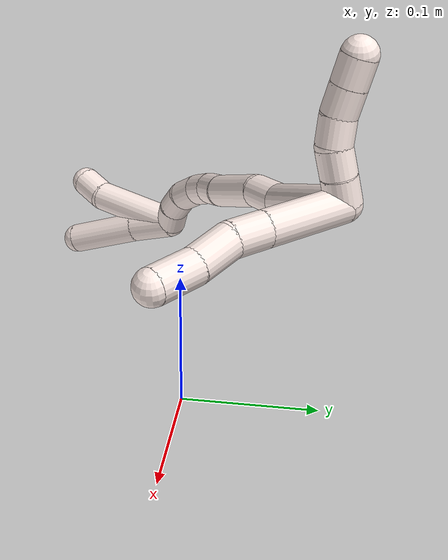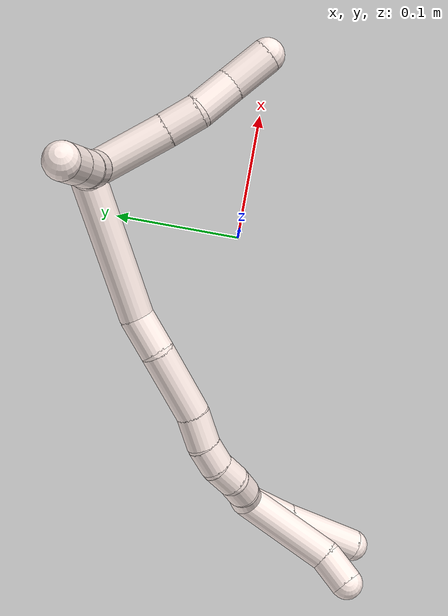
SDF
<sdf version="1.7">
 <world name="default">
  <model name="11">
   <static>0</static>
   <link name="11">
    <collision name="collision-cylinder-e_1_2_8">
     <pose>0.021028 -0.021797 0.004945 1.34772 0.75493 0.613247</pose>
     <geometry><cylinder><radius>0.0125</radius><length>0.061375</length></cylinder></geometry>
     <surface>
      <friction><ode><mu>1.16</mu><mu2>1.16</mu2><slip1>0</slip1><slip2>0</slip2></ode></friction>
      <contact><ode><kp>1e+06</kp><kd>1</kd><max_vel>0</max_vel><min_depth>0.001</min_depth></ode></contact>
     </surface>
    </collision>
    <visual name="visual-cylinder-e_1_2_8">
     <pose>0.021028 -0.021797 0.004945 1.34772 0.75493 0.613247</pose>
     <geometry><cylinder><radius>0.0125</radius><length>0.061375</length></cylinder></geometry>
     <material><ambient>1 0.933333 0.909804 1</ambient></material>
    </visual>
    <collision name="collision-cylinder-e_2_8_9">
     <pose>0.050993 -0.052409 0.012195 1.31499 0.775693 0.61111</pose>
     <geometry><cylinder><radius>0.0125</radius><length>0.025526</length></cylinder></geometry>
     <surface>
      <friction><ode><mu>1.16</mu><mu2>1.16</mu2><slip1>0</slip1><slip2>0</slip2></ode></friction>
      <contact><ode><kp>1e+06</kp><kd>1</kd><max_vel>0</max_vel><min_depth>0.001</min_depth></ode></contact>
     </surface>
    </collision>
    <visual name="visual-cylinder-e_2_8_9">
     <pose>0.050993 -0.052409 0.012195 1.31499 0.775693 0.61111</pose>
     <geometry><cylinder><radius>0.0125</radius><length>0.025526</length></cylinder></geometry>
     <material><ambient>1 0.933333 0.909804 1</ambient></material>
    </visual>
    <collision name="collision-cylinder-e_3_9_10">
     <pose>0.072695 -0.069197 0.014487 1.57248 1.01252 1.01394</pose>
     <geometry><cylinder><radius>0.0125</radius><length>0.030101</length></cylinder></geometry>
     <surface>
      <friction><ode><mu>1.16</mu><mu2>1.16</mu2><slip1>0</slip1><slip2>0</slip2></ode></friction>
      <contact><ode><kp>1e+06</kp><kd>1</kd><max_vel>0</max_vel><min_depth>0.001</min_depth></ode></contact>
     </surface>
    </collision>
    <visual name="visual-cylinder-e_3_9_10">
     <pose>0.072695 -0.069197 0.014487 1.57248 1.01252 1.01394</pose>
     <geometry><cylinder><radius>0.0125</radius><length>0.030101</length></cylinder></geometry>
     <material><ambient>1 0.933333 0.909804 1</ambient></material>
    </visual>
    <collision name="collision-cylinder-e_4_10_6">
     <pose>0.098696 -0.086606 0.017298 1.27998 0.930995 0.715763</pose>
     <geometry><cylinder><radius>0.0125</radius><length>0.032998</length></cylinder></geometry>
     <surface>
      <friction><ode><mu>1.16</mu><mu2>1.16</mu2><slip1>0</slip1><slip2>0</slip2></ode></friction>
      <contact><ode><kp>1e+06</kp><kd>1</kd><max_vel>0</max_vel><min_depth>0.001</min_depth></ode></contact>
     </surface>
    </collision>
    <visual name="visual-cylinder-e_4_10_6">
     <pose>0.098696 -0.086606 0.017298 1.27998 0.930995 0.715763</pose>
     <geometry><cylinder><radius>0.0125</radius><length>0.032998</length></cylinder></geometry>
     <material><ambient>1 0.933333 0.909804 1</ambient></material>
    </visual>
    <collision name="collision-cylinder-e_1_2_11">
     <pose>-0.002411 -0.002123 0.00947 0.22052 -0.243461 -0.027086</pose>
     <geometry><cylinder><radius>0.0125</radius><length>0.02</length></cylinder></geometry>
     <surface>
      <friction><ode><mu>1.16</mu><mu2>1.16</mu2><slip1>0</slip1><slip2>0</slip2></ode></friction>
      <contact><ode><kp>1e+06</kp><kd>1</kd><max_vel>0</max_vel><min_depth>0.001</min_depth></ode></contact>
     </surface>
    </collision>
    <visual name="visual-cylinder-e_1_2_11">
     <pose>-0.002411 -0.002123 0.00947 0.22052 -0.243461 -0.027086</pose>
     <geometry><cylinder><radius>0.0125</radius><length>0.02</length></cylinder></geometry>
     <material><ambient>1 0.933333 0.909804 1</ambient></material>
    </visual>
    <collision name="collision-cylinder-e_2_11_12">
     <pose>-0.007941 -0.006605 0.028144 0.250897 -0.317261 -0.040344</pose>
     <geometry><cylinder><radius>0.0125</radius><length>0.02</length></cylinder></geometry>
     <surface>
      <friction><ode><mu>1.16</mu><mu2>1.16</mu2><slip1>0</slip1><slip2>0</slip2></ode></friction>
      <contact><ode><kp>1e+06</kp><kd>1</kd><max_vel>0</max_vel><min_depth>0.001</min_depth></ode></contact>
     </surface>
    </collision>
    <visual name="visual-cylinder-e_2_11_12">
     <pose>-0.007941 -0.006605 0.028144 0.250897 -0.317261 -0.040344</pose>
     <geometry><cylinder><radius>0.0125</radius><length>0.02</length></cylinder></geometry>
     <material><ambient>1 0.933333 0.909804 1</ambient></material>
    </visual>
    <collision name="collision-cylinder-e_3_12_13">
     <pose>-0.015568 -0.008263 0.046246 -0.078543 -0.467617 0.018715</pose>
     <geometry><cylinder><radius>0.0125</radius><length>0.02</length></cylinder></geometry>
     <surface>
      <friction><ode><mu>1.16</mu><mu2>1.16</mu2><slip1>0</slip1><slip2>0</slip2></ode></friction>
      <contact><ode><kp>1e+06</kp><kd>1</kd><max_vel>0</max_vel><min_depth>0.001</min_depth></ode></contact>
     </surface>
    </collision>
    <visual name="visual-cylinder-e_3_12_13">
     <pose>-0.015568 -0.008263 0.046246 -0.078543 -0.467617 0.018715</pose>
     <geometry><cylinder><radius>0.0125</radius><length>0.02</length></cylinder></geometry>
     <material><ambient>1 0.933333 0.909804 1</ambient></material>
    </visual>
    <collision name="collision-cylinder-e_4_13_14">
     <pose>-0.023646 -0.005041 0.064139 -0.273318 -0.365086 0.050759</pose>
     <geometry><cylinder><radius>0.0125</radius><length>0.02</length></cylinder></geometry>
     <surface>
      <friction><ode><mu>1.16</mu><mu2>1.16</mu2><slip1>0</slip1><slip2>0</slip2></ode></friction>
      <contact><ode><kp>1e+06</kp><kd>1</kd><max_vel>0</max_vel><min_depth>0.001</min_depth></ode></contact>
     </surface>
    </collision>
    <visual name="visual-cylinder-e_4_13_14">
     <pose>-0.023646 -0.005041 0.064139 -0.273318 -0.365086 0.050759</pose>
     <geometry><cylinder><radius>0.0125</radius><length>0.02</length></cylinder></geometry>
     <material><ambient>1 0.933333 0.909804 1</ambient></material>
    </visual>
    <collision name="collision-cylinder-e_5_14_5">
     <pose>-0.030827 1.8e-05 0.082107 -0.275643 -0.369428 0.051819</pose>
     <geometry><cylinder><radius>0.0125</radius><length>0.02</length></cylinder></geometry>
     <surface>
      <friction><ode><mu>1.16</mu><mu2>1.16</mu2><slip1>0</slip1><slip2>0</slip2></ode></friction>
      <contact><ode><kp>1e+06</kp><kd>1</kd><max_vel>0</max_vel><min_depth>0.001</min_depth></ode></contact>
     </surface>
    </collision>
    <visual name="visual-cylinder-e_5_14_5">
     <pose>-0.030827 1.8e-05 0.082107 -0.275643 -0.369428 0.051819</pose>
     <geometry><cylinder><radius>0.0125</radius><length>0.02</length></cylinder></geometry>
     <material><ambient>1 0.933333 0.909804 1</ambient></material>
    </visual>
    <collision name="collision-cylinder-e_1_2_15">
     <pose>-0.034174 -0.027759 -0.03191 2.42565 -0.679598 -1.51424</pose>
     <geometry><cylinder><radius>0.0125</radius><length>0.10875</length></cylinder></geometry>
     <surface>
      <friction><ode><mu>1.16</mu><mu2>1.16</mu2><slip1>0</slip1><slip2>0</slip2></ode></friction>
      <contact><ode><kp>1e+06</kp><kd>1</kd><max_vel>0</max_vel><min_depth>0.001</min_depth></ode></contact>
     </surface>
    </collision>
    <visual name="visual-cylinder-e_1_2_15">
     <pose>-0.034174 -0.027759 -0.03191 2.42565 -0.679598 -1.51424</pose>
     <geometry><cylinder><radius>0.0125</radius><length>0.10875</length></cylinder></geometry>
     <material><ambient>1 0.933333 0.909804 1</ambient></material>
    </visual>
    <collision name="collision-cylinder-e_2_15_16">
     <pose>-0.077555 -0.065877 -0.068428 1.98939 -0.682106 -1.00009</pose>
     <geometry><cylinder><radius>0.0125</radius><length>0.029213</length></cylinder></geometry>
     <surface>
      <friction><ode><mu>1.16</mu><mu2>1.16</mu2><slip1>0</slip1><slip2>0</slip2></ode></friction>
      <contact><ode><kp>1e+06</kp><kd>1</kd><max_vel>0</max_vel><min_depth>0.001</min_depth></ode></contact>
     </surface>
    </collision>
    <visual name="visual-cylinder-e_2_15_16">
     <pose>-0.077555 -0.065877 -0.068428 1.98939 -0.682106 -1.00009</pose>
     <geometry><cylinder><radius>0.0125</radius><length>0.029213</length></cylinder></geometry>
     <material><ambient>1 0.933333 0.909804 1</ambient></material>
    </visual>
    <collision name="collision-cylinder-e_3_16_17">
     <pose>-0.101311 -0.094024 -0.087841 2.26492 -0.561195 -1.1025</pose>
     <geometry><cylinder><radius>0.0125</radius><length>0.054669</length></cylinder></geometry>
     <surface>
      <friction><ode><mu>1.16</mu><mu2>1.16</mu2><slip1>0</slip1><slip2>0</slip2></ode></friction>
      <contact><ode><kp>1e+06</kp><kd>1</kd><max_vel>0</max_vel><min_depth>0.001</min_depth></ode></contact>
     </surface>
    </collision>
    <visual name="visual-cylinder-e_3_16_17">
     <pose>-0.101311 -0.094024 -0.087841 2.26492 -0.561195 -1.1025</pose>
     <geometry><cylinder><radius>0.0125</radius><length>0.054669</length></cylinder></geometry>
     <material><ambient>1 0.933333 0.909804 1</ambient></material>
    </visual>
    <collision name="collision-cylinder-e_4_17_18">
     <pose>-0.124545 -0.118713 -0.109607 2.36052 -0.72511 -1.48903</pose>
     <geometry><cylinder><radius>0.0125</radius><length>0.026196</length></cylinder></geometry>
     <surface>
      <friction><ode><mu>1.16</mu><mu2>1.16</mu2><slip1>0</slip1><slip2>0</slip2></ode></friction>
      <contact><ode><kp>1e+06</kp><kd>1</kd><max_vel>0</max_vel><min_depth>0.001</min_depth></ode></contact>
     </surface>
    </collision>
    <visual name="visual-cylinder-e_4_17_18">
     <pose>-0.124545 -0.118713 -0.109607 2.36052 -0.72511 -1.48903</pose>
     <geometry><cylinder><radius>0.0125</radius><length>0.026196</length></cylinder></geometry>
     <material><ambient>1 0.933333 0.909804 1</ambient></material>
    </visual>
    <collision name="collision-cylinder-e_5_18_19">
     <pose>-0.13833 -0.132449 -0.122549 2.28968 -0.511529 -1.04563</pose>
     <geometry><cylinder><radius>0.0125</radius><length>0.02083</length></cylinder></geometry>
     <surface>
      <friction><ode><mu>1.16</mu><mu2>1.16</mu2><slip1>0</slip1><slip2>0</slip2></ode></friction>
      <contact><ode><kp>1e+06</kp><kd>1</kd><max_vel>0</max_vel><min_depth>0.001</min_depth></ode></contact>
     </surface>
    </collision>
    <visual name="visual-cylinder-e_5_18_19">
     <pose>-0.13833 -0.132449 -0.122549 2.28968 -0.511529 -1.04563</pose>
     <geometry><cylinder><radius>0.0125</radius><length>0.02083</length></cylinder></geometry>
     <material><ambient>1 0.933333 0.909804 1</ambient></material>
    </visual>
    <collision name="collision-cylinder-e_6_19_20">
     <pose>-0.14573 -0.146744 -0.135036 2.28797 -0.228466 -0.494265</pose>
     <geometry><cylinder><radius>0.0125</radius><length>0.020327</length></cylinder></geometry>
     <surface>
      <friction><ode><mu>1.16</mu><mu2>1.16</mu2><slip1>0</slip1><slip2>0</slip2></ode></friction>
      <contact><ode><kp>1e+06</kp><kd>1</kd><max_vel>0</max_vel><min_depth>0.001</min_depth></ode></contact>
     </surface>
    </collision>
    <visual name="visual-cylinder-e_6_19_20">
     <pose>-0.14573 -0.146744 -0.135036 2.28797 -0.228466 -0.494265</pose>
     <geometry><cylinder><radius>0.0125</radius><length>0.020327</length></cylinder></geometry>
     <material><ambient>1 0.933333 0.909804 1</ambient></material>
    </visual>
    <collision name="collision-cylinder-e_7_20_21">
     <pose>-0.1495 -0.159145 -0.150116 2.61882 -0.147264 -0.538133</pose>
     <geometry><cylinder><radius>0.0125</radius><length>0.020006</length></cylinder></geometry>
     <surface>
      <friction><ode><mu>1.16</mu><mu2>1.16</mu2><slip1>0</slip1><slip2>0</slip2></ode></friction>
      <contact><ode><kp>1e+06</kp><kd>1</kd><max_vel>0</max_vel><min_depth>0.001</min_depth></ode></contact>
     </surface>
    </collision>
    <visual name="visual-cylinder-e_7_20_21">
     <pose>-0.1495 -0.159145 -0.150116 2.61882 -0.147264 -0.538133</pose>
     <geometry><cylinder><radius>0.0125</radius><length>0.020006</length></cylinder></geometry>
     <material><ambient>1 0.933333 0.909804 1</ambient></material>
    </visual>
    <collision name="collision-cylinder-e_8_21_1">
     <pose>-0.151789 -0.166702 -0.168311 2.87603 -0.082138 -0.596919</pose>
     <geometry><cylinder><radius>0.0125</radius><length>0.02001</length></cylinder></geometry>
     <surface>
      <friction><ode><mu>1.16</mu><mu2>1.16</mu2><slip1>0</slip1><slip2>0</slip2></ode></friction>
      <contact><ode><kp>1e+06</kp><kd>1</kd><max_vel>0</max_vel><min_depth>0.001</min_depth></ode></contact>
     </surface>
    </collision>
    <visual name="visual-cylinder-e_8_21_1">
     <pose>-0.151789 -0.166702 -0.168311 2.87603 -0.082138 -0.596919</pose>
     <geometry><cylinder><radius>0.0125</radius><length>0.02001</length></cylinder></geometry>
     <material><ambient>1 0.933333 0.909804 1</ambient></material>
    </visual>
    <collision name="collision-cylinder-e_1_1_22">
     <pose>-0.165284 -0.204164 -0.178317 1.58183 -0.34884 -0.352633</pose>
     <geometry><cylinder><radius>0.0125</radius><length>0.07416</length></cylinder></geometry>
     <surface>
      <friction><ode><mu>1.16</mu><mu2>1.16</mu2><slip1>0</slip1><slip2>0</slip2></ode></friction>
      <contact><ode><kp>1e+06</kp><kd>1</kd><max_vel>0</max_vel><min_depth>0.001</min_depth></ode></contact>
     </surface>
    </collision>
    <visual name="visual-cylinder-e_1_1_22">
     <pose>-0.165284 -0.204164 -0.178317 1.58183 -0.34884 -0.352633</pose>
     <geometry><cylinder><radius>0.0125</radius><length>0.07416</length></cylinder></geometry>
     <material><ambient>1 0.933333 0.909804 1</ambient></material>
    </visual>
    <collision name="collision-cylinder-e_2_22_4">
     <pose>-0.185933 -0.249168 -0.17838 1.53916 -0.665298 -0.646007</pose>
     <geometry><cylinder><radius>0.0125</radius><length>0.02584</length></cylinder></geometry>
     <surface>
      <friction><ode><mu>1.16</mu><mu2>1.16</mu2><slip1>0</slip1><slip2>0</slip2></ode></friction>
      <contact><ode><kp>1e+06</kp><kd>1</kd><max_vel>0</max_vel><min_depth>0.001</min_depth></ode></contact>
     </surface>
    </collision>
    <visual name="visual-cylinder-e_2_22_4">
     <pose>-0.185933 -0.249168 -0.17838 1.53916 -0.665298 -0.646007</pose>
     <geometry><cylinder><radius>0.0125</radius><length>0.02584</length></cylinder></geometry>
     <material><ambient>1 0.933333 0.909804 1</ambient></material>
    </visual>
    <collision name="collision-cylinder-e_1_1_23">
     <pose>-0.15437 -0.186368 -0.184727 1.95005 -0.095609 -0.140901</pose>
     <geometry><cylinder><radius>0.0125</radius><length>0.036875</length></cylinder></geometry>
     <surface>
      <friction><ode><mu>1.16</mu><mu2>1.16</mu2><slip1>0</slip1><slip2>0</slip2></ode></friction>
      <contact><ode><kp>1e+06</kp><kd>1</kd><max_vel>0</max_vel><min_depth>0.001</min_depth></ode></contact>
     </surface>
    </collision>
    <visual name="visual-cylinder-e_1_1_23">
     <pose>-0.15437 -0.186368 -0.184727 1.95005 -0.095609 -0.140901</pose>
     <geometry><cylinder><radius>0.0125</radius><length>0.036875</length></cylinder></geometry>
     <material><ambient>1 0.933333 0.909804 1</ambient></material>
    </visual>
    <collision name="collision-cylinder-e_2_23_3">
     <pose>-0.157016 -0.232542 -0.203654 1.96549 -0.02808 -0.042112</pose>
     <geometry><cylinder><radius>0.0125</radius><length>0.063125</length></cylinder></geometry>
     <surface>
      <friction><ode><mu>1.16</mu><mu2>1.16</mu2><slip1>0</slip1><slip2>0</slip2></ode></friction>
      <contact><ode><kp>1e+06</kp><kd>1</kd><max_vel>0</max_vel><min_depth>0.001</min_depth></ode></contact>
     </surface>
    </collision>
    <visual name="visual-cylinder-e_2_23_3">
     <pose>-0.157016 -0.232542 -0.203654 1.96549 -0.02808 -0.042112</pose>
     <geometry><cylinder><radius>0.0125</radius><length>0.063125</length></cylinder></geometry>
     <material><ambient>1 0.933333 0.909804 1</ambient></material>
    </visual>
    <collision name="collision-sphere-3">
     <pose>-0.157902 -0.261666 -0.215786 0 -0 0</pose>
     <geometry><sphere><radius>0.0125</radius></sphere></geometry>
     <surface>
      <friction><ode><mu>1.16</mu><mu2>1.16</mu2><slip1>0</slip1><slip2>0</slip2></ode></friction>
      <contact><ode><kp>1e+06</kp><kd>1</kd><max_vel>0</max_vel><min_depth>0.001</min_depth></ode></contact>
     </surface>
    </collision>
    <visual name="visual-sphere-3">
     <pose>-0.157902 -0.261666 -0.215786 0 -0 0</pose>
     <geometry><sphere><radius>0.0125</radius></sphere></geometry>
     <material><ambient>1 0.933333 0.909804 1</ambient></material>
    </visual>
    <collision name="collision-sphere-23">
     <pose>-0.15613 -0.203418 -0.191522 0 -0 0</pose>
     <geometry><sphere><radius>0.0125</radius></sphere></geometry>
     <surface>
      <friction><ode><mu>1.16</mu><mu2>1.16</mu2><slip1>0</slip1><slip2>0</slip2></ode></friction>
      <contact><ode><kp>1e+06</kp><kd>1</kd><max_vel>0</max_vel><min_depth>0.001</min_depth></ode></contact>
     </surface>
    </collision>
    <visual name="visual-sphere-23">
     <pose>-0.15613 -0.203418 -0.191522 0 -0 0</pose>
     <geometry><sphere><radius>0.0125</radius></sphere></geometry>
     <material><ambient>1 0.933333 0.909804 1</ambient></material>
    </visual>
    <collision name="collision-sphere-4">
     <pose>-0.193909 -0.259327 -0.178058 0 -0 0</pose>
     <geometry><sphere><radius>0.0125</radius></sphere></geometry>
     <surface>
      <friction><ode><mu>1.16</mu><mu2>1.16</mu2><slip1>0</slip1><slip2>0</slip2></ode></friction>
      <contact><ode><kp>1e+06</kp><kd>1</kd><max_vel>0</max_vel><min_depth>0.001</min_depth></ode></contact>
     </surface>
    </collision>
    <visual name="visual-sphere-4">
     <pose>-0.193909 -0.259327 -0.178058 0 -0 0</pose>
     <geometry><sphere><radius>0.0125</radius></sphere></geometry>
     <material><ambient>1 0.933333 0.909804 1</ambient></material>
    </visual>
    <collision name="collision-sphere-22">
     <pose>-0.177958 -0.239009 -0.178701 0 -0 0</pose>
     <geometry><sphere><radius>0.0125</radius></sphere></geometry>
     <surface>
      <friction><ode><mu>1.16</mu><mu2>1.16</mu2><slip1>0</slip1><slip2>0</slip2></ode></friction>
      <contact><ode><kp>1e+06</kp><kd>1</kd><max_vel>0</max_vel><min_depth>0.001</min_depth></ode></contact>
     </surface>
    </collision>
    <visual name="visual-sphere-22">
     <pose>-0.177958 -0.239009 -0.178701 0 -0 0</pose>
     <geometry><sphere><radius>0.0125</radius></sphere></geometry>
     <material><ambient>1 0.933333 0.909804 1</ambient></material>
    </visual>
    <collision name="collision-sphere-1">
     <pose>-0.15261 -0.169319 -0.177932 0 -0 0</pose>
     <geometry><sphere><radius>0.0125</radius></sphere></geometry>
     <surface>
      <friction><ode><mu>1.16</mu><mu2>1.16</mu2><slip1>0</slip1><slip2>0</slip2></ode></friction>
      <contact><ode><kp>1e+06</kp><kd>1</kd><max_vel>0</max_vel><min_depth>0.001</min_depth></ode></contact>
     </surface>
    </collision>
    <visual name="visual-sphere-1">
     <pose>-0.15261 -0.169319 -0.177932 0 -0 0</pose>
     <geometry><sphere><radius>0.0125</radius></sphere></geometry>
     <material><ambient>1 0.933333 0.909804 1</ambient></material>
    </visual>
    <collision name="collision-sphere-21">
     <pose>-0.150968 -0.164085 -0.158689 0 -0 0</pose>
     <geometry><sphere><radius>0.0125</radius></sphere></geometry>
     <surface>
      <friction><ode><mu>1.16</mu><mu2>1.16</mu2><slip1>0</slip1><slip2>0</slip2></ode></friction>
      <contact><ode><kp>1e+06</kp><kd>1</kd><max_vel>0</max_vel><min_depth>0.001</min_depth></ode></contact>
     </surface>
    </collision>
    <visual name="visual-sphere-21">
     <pose>-0.150968 -0.164085 -0.158689 0 -0 0</pose>
     <geometry><sphere><radius>0.0125</radius></sphere></geometry>
     <material><ambient>1 0.933333 0.909804 1</ambient></material>
    </visual>
    <collision name="collision-sphere-11">
     <pose>-0.004821 -0.004246 0.01894 0 -0 0</pose>
     <geometry><sphere><radius>0.0125</radius></sphere></geometry>
     <surface>
      <friction><ode><mu>1.16</mu><mu2>1.16</mu2><slip1>0</slip1><slip2>0</slip2></ode></friction>
      <contact><ode><kp>1e+06</kp><kd>1</kd><max_vel>0</max_vel><min_depth>0.001</min_depth></ode></contact>
     </surface>
    </collision>
    <visual name="visual-sphere-11">
     <pose>-0.004821 -0.004246 0.01894 0 -0 0</pose>
     <geometry><sphere><radius>0.0125</radius></sphere></geometry>
     <material><ambient>1 0.933333 0.909804 1</ambient></material>
    </visual>
    <collision name="collision-sphere-6">
     <pose>0.111932 -0.096043 0.020123 0 -0 0</pose>
     <geometry><sphere><radius>0.0125</radius></sphere></geometry>
     <surface>
      <friction><ode><mu>1.16</mu><mu2>1.16</mu2><slip1>0</slip1><slip2>0</slip2></ode></friction>
      <contact><ode><kp>1e+06</kp><kd>1</kd><max_vel>0</max_vel><min_depth>0.001</min_depth></ode></contact>
     </surface>
    </collision>
    <visual name="visual-sphere-6">
     <pose>0.111932 -0.096043 0.020123 0 -0 0</pose>
     <geometry><sphere><radius>0.0125</radius></sphere></geometry>
     <material><ambient>1 0.933333 0.909804 1</ambient></material>
    </visual>
    <collision name="collision-sphere-10">
     <pose>0.08546 -0.077169 0.014473 0 -0 0</pose>
     <geometry><sphere><radius>0.0125</radius></sphere></geometry>
     <surface>
      <friction><ode><mu>1.16</mu><mu2>1.16</mu2><slip1>0</slip1><slip2>0</slip2></ode></friction>
      <contact><ode><kp>1e+06</kp><kd>1</kd><max_vel>0</max_vel><min_depth>0.001</min_depth></ode></contact>
     </surface>
    </collision>
    <visual name="visual-sphere-10">
     <pose>0.08546 -0.077169 0.014473 0 -0 0</pose>
     <geometry><sphere><radius>0.0125</radius></sphere></geometry>
     <material><ambient>1 0.933333 0.909804 1</ambient></material>
    </visual>
    <collision name="collision-sphere-9">
     <pose>0.05993 -0.061224 0.0145 0 -0 0</pose>
     <geometry><sphere><radius>0.0125</radius></sphere></geometry>
     <surface>
      <friction><ode><mu>1.16</mu><mu2>1.16</mu2><slip1>0</slip1><slip2>0</slip2></ode></friction>
      <contact><ode><kp>1e+06</kp><kd>1</kd><max_vel>0</max_vel><min_depth>0.001</min_depth></ode></contact>
     </surface>
    </collision>
    <visual name="visual-sphere-9">
     <pose>0.05993 -0.061224 0.0145 0 -0 0</pose>
     <geometry><sphere><radius>0.0125</radius></sphere></geometry>
     <material><ambient>1 0.933333 0.909804 1</ambient></material>
    </visual>
    <collision name="collision-sphere-2">
     <geometry><sphere><radius>0.0125</radius></sphere></geometry>
     <surface>
      <friction><ode><mu>1.16</mu><mu2>1.16</mu2><slip1>0</slip1><slip2>0</slip2></ode></friction>
      <contact><ode><kp>1e+06</kp><kd>1</kd><max_vel>0</max_vel><min_depth>0.001</min_depth></ode></contact>
     </surface>
    </collision>
    <visual name="visual-sphere-2">
     <geometry><sphere><radius>0.0125</radius></sphere></geometry>
     <material><ambient>1 0.933333 0.909804 1</ambient></material>
    </visual>
    <collision name="collision-sphere-19">
     <pose>-0.143429 -0.139283 -0.12853 0 -0 0</pose>
     <geometry><sphere><radius>0.0125</radius></sphere></geometry>
     <surface>
      <friction><ode><mu>1.16</mu><mu2>1.16</mu2><slip1>0</slip1><slip2>0</slip2></ode></friction>
      <contact><ode><kp>1e+06</kp><kd>1</kd><max_vel>0</max_vel><min_depth>0.001</min_depth></ode></contact>
     </surface>
    </collision>
    <visual name="visual-sphere-19">
     <pose>-0.143429 -0.139283 -0.12853 0 -0 0</pose>
     <geometry><sphere><radius>0.0125</radius></sphere></geometry>
     <material><ambient>1 0.933333 0.909804 1</ambient></material>
    </visual>
    <collision name="collision-sphere-8">
     <pose>0.042057 -0.043593 0.009889 0 -0 0</pose>
     <geometry><sphere><radius>0.0125</radius></sphere></geometry>
     <surface>
      <friction><ode><mu>1.16</mu><mu2>1.16</mu2><slip1>0</slip1><slip2>0</slip2></ode></friction>
      <contact><ode><kp>1e+06</kp><kd>1</kd><max_vel>0</max_vel><min_depth>0.001</min_depth></ode></contact>
     </surface>
    </collision>
    <visual name="visual-sphere-8">
     <pose>0.042057 -0.043593 0.009889 0 -0 0</pose>
     <geometry><sphere><radius>0.0125</radius></sphere></geometry>
     <material><ambient>1 0.933333 0.909804 1</ambient></material>
    </visual>
    <collision name="collision-sphere-12">
     <pose>-0.011061 -0.008963 0.037347 0 -0 0</pose>
     <geometry><sphere><radius>0.0125</radius></sphere></geometry>
     <surface>
      <friction><ode><mu>1.16</mu><mu2>1.16</mu2><slip1>0</slip1><slip2>0</slip2></ode></friction>
      <contact><ode><kp>1e+06</kp><kd>1</kd><max_vel>0</max_vel><min_depth>0.001</min_depth></ode></contact>
     </surface>
    </collision>
    <visual name="visual-sphere-12">
     <pose>-0.011061 -0.008963 0.037347 0 -0 0</pose>
     <geometry><sphere><radius>0.0125</radius></sphere></geometry>
     <material><ambient>1 0.933333 0.909804 1</ambient></material>
    </visual>
    <collision name="collision-sphere-13">
     <pose>-0.020076 -0.007563 0.055145 0 -0 0</pose>
     <geometry><sphere><radius>0.0125</radius></sphere></geometry>
     <surface>
      <friction><ode><mu>1.16</mu><mu2>1.16</mu2><slip1>0</slip1><slip2>0</slip2></ode></friction>
      <contact><ode><kp>1e+06</kp><kd>1</kd><max_vel>0</max_vel><min_depth>0.001</min_depth></ode></contact>
     </surface>
    </collision>
    <visual name="visual-sphere-13">
     <pose>-0.020076 -0.007563 0.055145 0 -0 0</pose>
     <geometry><sphere><radius>0.0125</radius></sphere></geometry>
     <material><ambient>1 0.933333 0.909804 1</ambient></material>
    </visual>
    <collision name="collision-sphere-14">
     <pose>-0.027216 -0.00252 0.073133 0 -0 0</pose>
     <geometry><sphere><radius>0.0125</radius></sphere></geometry>
     <surface>
      <friction><ode><mu>1.16</mu><mu2>1.16</mu2><slip1>0</slip1><slip2>0</slip2></ode></friction>
      <contact><ode><kp>1e+06</kp><kd>1</kd><max_vel>0</max_vel><min_depth>0.001</min_depth></ode></contact>
     </surface>
    </collision>
    <visual name="visual-sphere-14">
     <pose>-0.027216 -0.00252 0.073133 0 -0 0</pose>
     <geometry><sphere><radius>0.0125</radius></sphere></geometry>
     <material><ambient>1 0.933333 0.909804 1</ambient></material>
    </visual>
    <collision name="collision-sphere-5">
     <pose>-0.034438 0.002556 0.09108 0 -0 0</pose>
     <geometry><sphere><radius>0.0125</radius></sphere></geometry>
     <surface>
      <friction><ode><mu>1.16</mu><mu2>1.16</mu2><slip1>0</slip1><slip2>0</slip2></ode></friction>
      <contact><ode><kp>1e+06</kp><kd>1</kd><max_vel>0</max_vel><min_depth>0.001</min_depth></ode></contact>
     </surface>
    </collision>
    <visual name="visual-sphere-5">
     <pose>-0.034438 0.002556 0.09108 0 -0 0</pose>
     <geometry><sphere><radius>0.0125</radius></sphere></geometry>
     <material><ambient>1 0.933333 0.909804 1</ambient></material>
    </visual>
    <collision name="collision-sphere-15">
     <pose>-0.068347 -0.055518 -0.06382 0 -0 0</pose>
     <geometry><sphere><radius>0.0125</radius></sphere></geometry>
     <surface>
      <friction><ode><mu>1.16</mu><mu2>1.16</mu2><slip1>0</slip1><slip2>0</slip2></ode></friction>
      <contact><ode><kp>1e+06</kp><kd>1</kd><max_vel>0</max_vel><min_depth>0.001</min_depth></ode></contact>
     </surface>
    </collision>
    <visual name="visual-sphere-15">
     <pose>-0.068347 -0.055518 -0.06382 0 -0 0</pose>
     <geometry><sphere><radius>0.0125</radius></sphere></geometry>
     <material><ambient>1 0.933333 0.909804 1</ambient></material>
    </visual>
    <collision name="collision-sphere-16">
     <pose>-0.086764 -0.076237 -0.073037 0 -0 0</pose>
     <geometry><sphere><radius>0.0125</radius></sphere></geometry>
     <surface>
      <friction><ode><mu>1.16</mu><mu2>1.16</mu2><slip1>0</slip1><slip2>0</slip2></ode></friction>
      <contact><ode><kp>1e+06</kp><kd>1</kd><max_vel>0</max_vel><min_depth>0.001</min_depth></ode></contact>
     </surface>
    </collision>
    <visual name="visual-sphere-16">
     <pose>-0.086764 -0.076237 -0.073037 0 -0 0</pose>
     <geometry><sphere><radius>0.0125</radius></sphere></geometry>
     <material><ambient>1 0.933333 0.909804 1</ambient></material>
    </visual>
    <collision name="collision-sphere-17">
     <pose>-0.115859 -0.111811 -0.102645 0 -0 0</pose>
     <geometry><sphere><radius>0.0125</radius></sphere></geometry>
     <surface>
      <friction><ode><mu>1.16</mu><mu2>1.16</mu2><slip1>0</slip1><slip2>0</slip2></ode></friction>
      <contact><ode><kp>1e+06</kp><kd>1</kd><max_vel>0</max_vel><min_depth>0.001</min_depth></ode></contact>
     </surface>
    </collision>
    <visual name="visual-sphere-17">
     <pose>-0.115859 -0.111811 -0.102645 0 -0 0</pose>
     <geometry><sphere><radius>0.0125</radius></sphere></geometry>
     <material><ambient>1 0.933333 0.909804 1</ambient></material>
    </visual>
    <collision name="collision-sphere-18">
     <pose>-0.133232 -0.125615 -0.116568 0 -0 0</pose>
     <geometry><sphere><radius>0.0125</radius></sphere></geometry>
     <surface>
      <friction><ode><mu>1.16</mu><mu2>1.16</mu2><slip1>0</slip1><slip2>0</slip2></ode></friction>
      <contact><ode><kp>1e+06</kp><kd>1</kd><max_vel>0</max_vel><min_depth>0.001</min_depth></ode></contact>
     </surface>
    </collision>
    <visual name="visual-sphere-18">
     <pose>-0.133232 -0.125615 -0.116568 0 -0 0</pose>
     <geometry><sphere><radius>0.0125</radius></sphere></geometry>
     <material><ambient>1 0.933333 0.909804 1</ambient></material>
    </visual>
    <collision name="collision-sphere-20">
     <pose>-0.148032 -0.154205 -0.141543 0 -0 0</pose>
     <geometry><sphere><radius>0.0125</radius></sphere></geometry>
     <surface>
      <friction><ode><mu>1.16</mu><mu2>1.16</mu2><slip1>0</slip1><slip2>0</slip2></ode></friction>
      <contact><ode><kp>1e+06</kp><kd>1</kd><max_vel>0</max_vel><min_depth>0.001</min_depth></ode></contact>
     </surface>
    </collision>
    <visual name="visual-sphere-20">
     <pose>-0.148032 -0.154205 -0.141543 0 -0 0</pose>
     <geometry><sphere><radius>0.0125</radius></sphere></geometry>
     <material><ambient>1 0.933333 0.909804 1</ambient></material>
    </visual>
    <inertial>
     <pose>-0.070522 -0.102189 -0.074784 0 -0 0</pose>
     <mass>0.75</mass>
     <inertia>
      <ixx>-1.3e-05</ixx>
      <ixy>0</ixy>
      <ixz>0</ixz>
      <iyy>-8.1e-05</iyy>
      <iyz>0</iyz>
      <izz>0.000229</izz>
     </inertia>
    </inertial>
   </link>
   <pose>0.011702 0.10861 0.168906 -0.006702 0.304598 -0.095509</pose>
  </model>
 </world>
</sdf>
